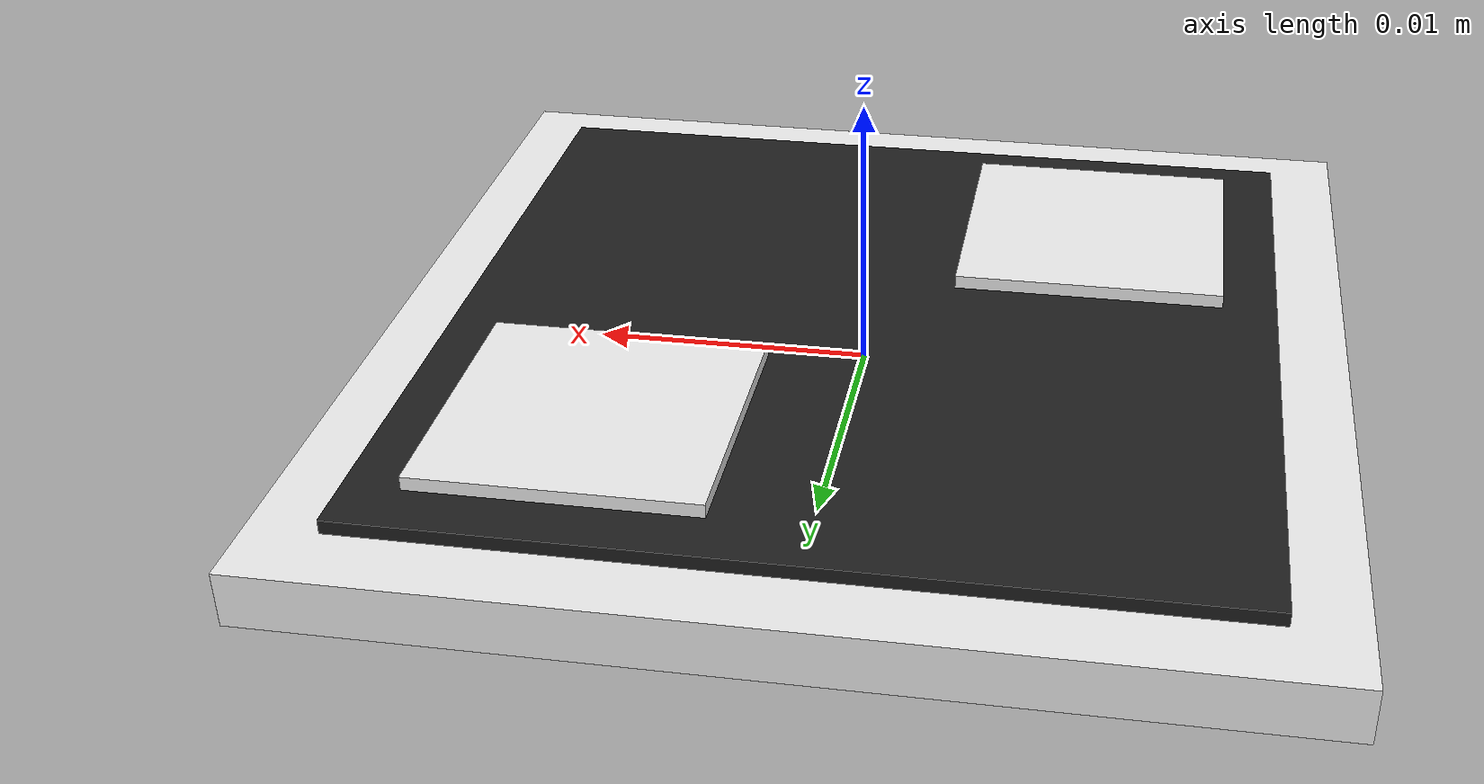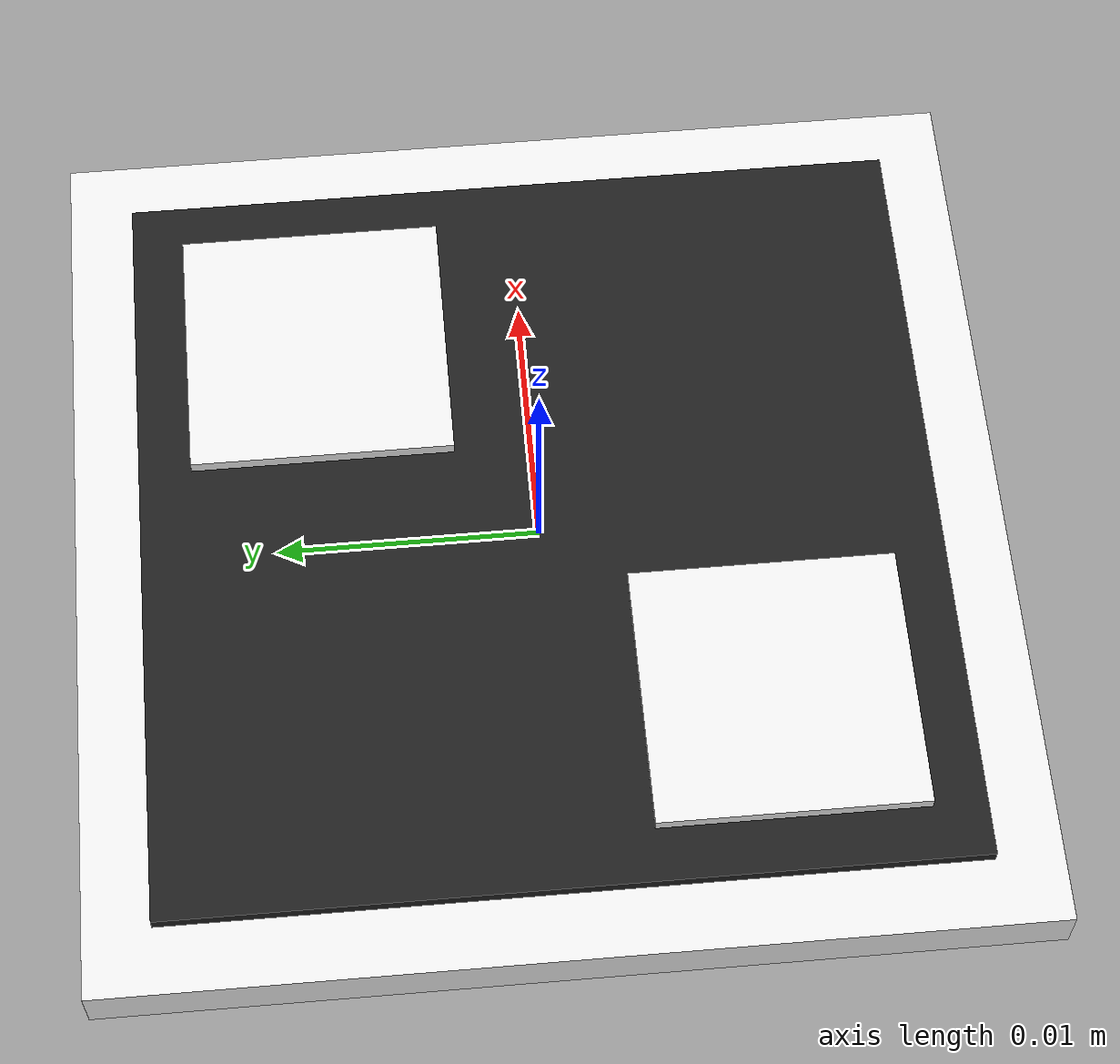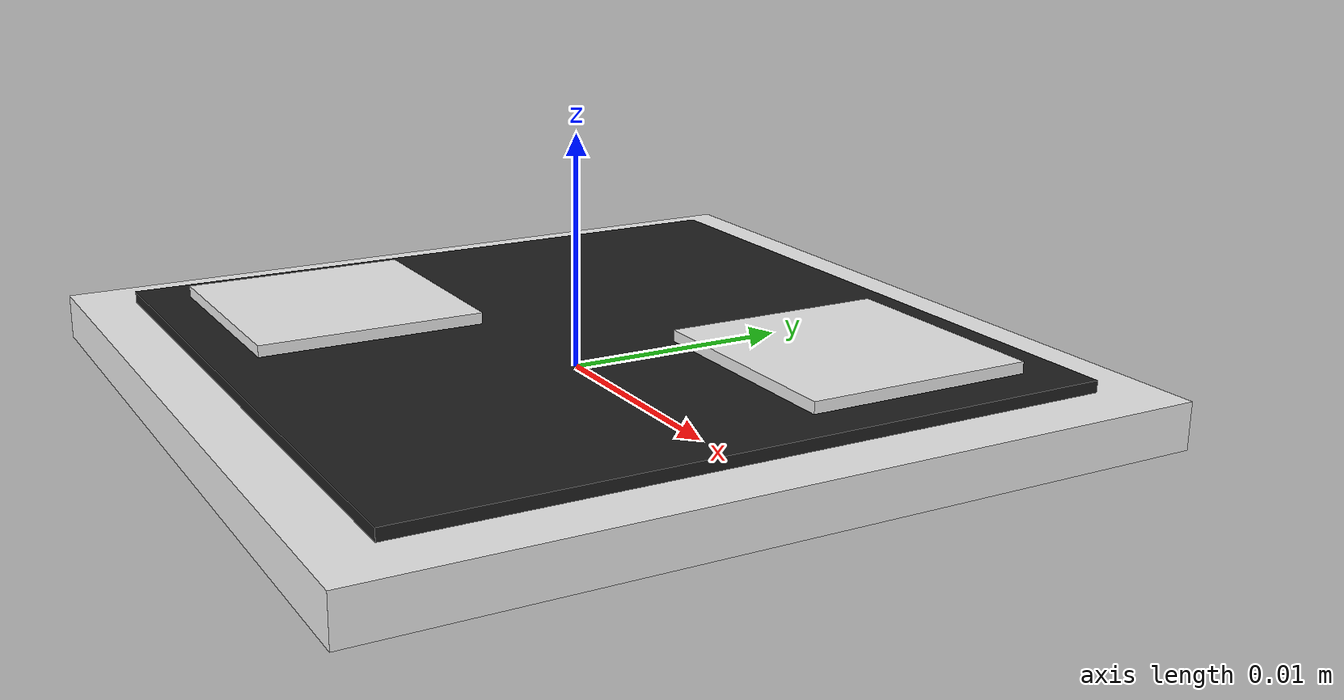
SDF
<?xml version="1.0" ?>
<sdf version="1.7">
  <model name="aruco_marker_102">
    <static>true</static>
    <link name="marker_link">
      <!-- Collision -->
      <collision name="marker_collision">
        <geometry>
          <box>
            <size>0.035 0.035 0.002</size>  <!-- 3.5cm x 3.5cm x 2mm -->
          </box>
        </geometry>
      </collision>

      <!-- Base visual (white background) -->
      <visual name="base">
        <geometry>
          <box>
            <size>0.035 0.035 0.002</size>  <!-- 3.5cm x 3.5cm -->
          </box>
        </geometry>
        <material>
          <script>
            <uri>file://media/materials/scripts/gazebo.material</uri>
            <name>Gazebo/White</name>
          </script>
        </material>
      </visual>

      <visual name="aruco_pattern">
        <pose>0 0 0.001 0 0 0</pose>
        <geometry>
          <box>
            <size>0.03 0.03 0.001</size>  <!-- ArUco 패턴 -->
          </box>
        </geometry>
        <material>
          <script>
            <uri>file://media/materials/scripts/gazebo.material</uri>
            <name>Gazebo/Black</name>
          </script>
        </material>
      </visual>

      <!-- Different pattern for ID 102 -->
      <visual name="pattern_102">
        <pose>-0.008 -0.008 0.0015 0 0 0</pose>
        <geometry>
          <box>
            <size>0.01 0.01 0.001</size>
          </box>
        </geometry>
        <material>
          <script>
            <uri>file://media/materials/scripts/gazebo.material</uri>
            <name>Gazebo/White</name>
          </script>
        </material>
      </visual>

      <visual name="pattern_102_2">
        <pose>0.008 0.008 0.0015 0 0 0</pose>
        <geometry>
          <box>
            <size>0.01 0.01 0.001</size>
          </box>
        </geometry>
        <material>
          <script>
            <uri>file://media/materials/scripts/gazebo.material</uri>
            <name>Gazebo/White</name>
          </script>
        </material>
      </visual>

      <inertial>
        <mass>0.01</mass>
        <inertia>
          <ixx>0.000001</ixx>
          <iyy>0.000001</iyy>
          <izz>0.000001</izz>
        </inertia>
      </inertial>
    </link>
  </model>
</sdf>
